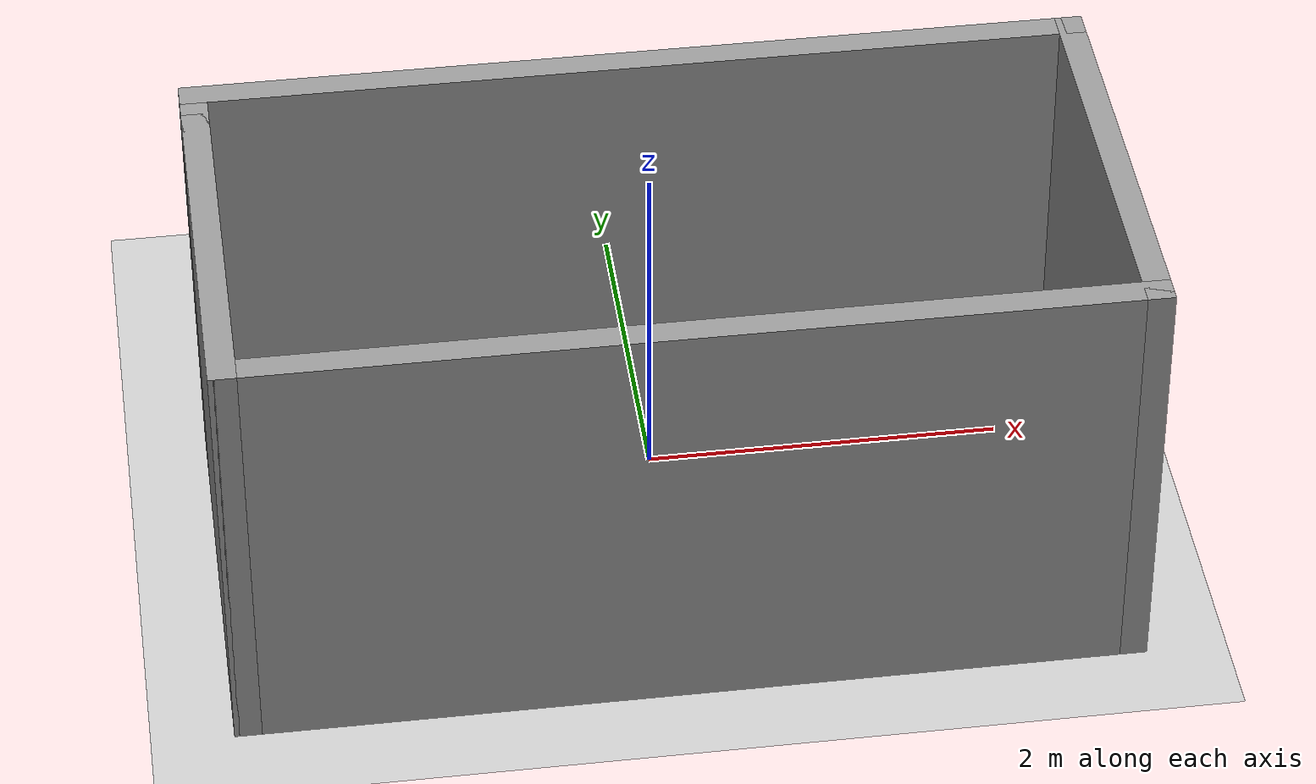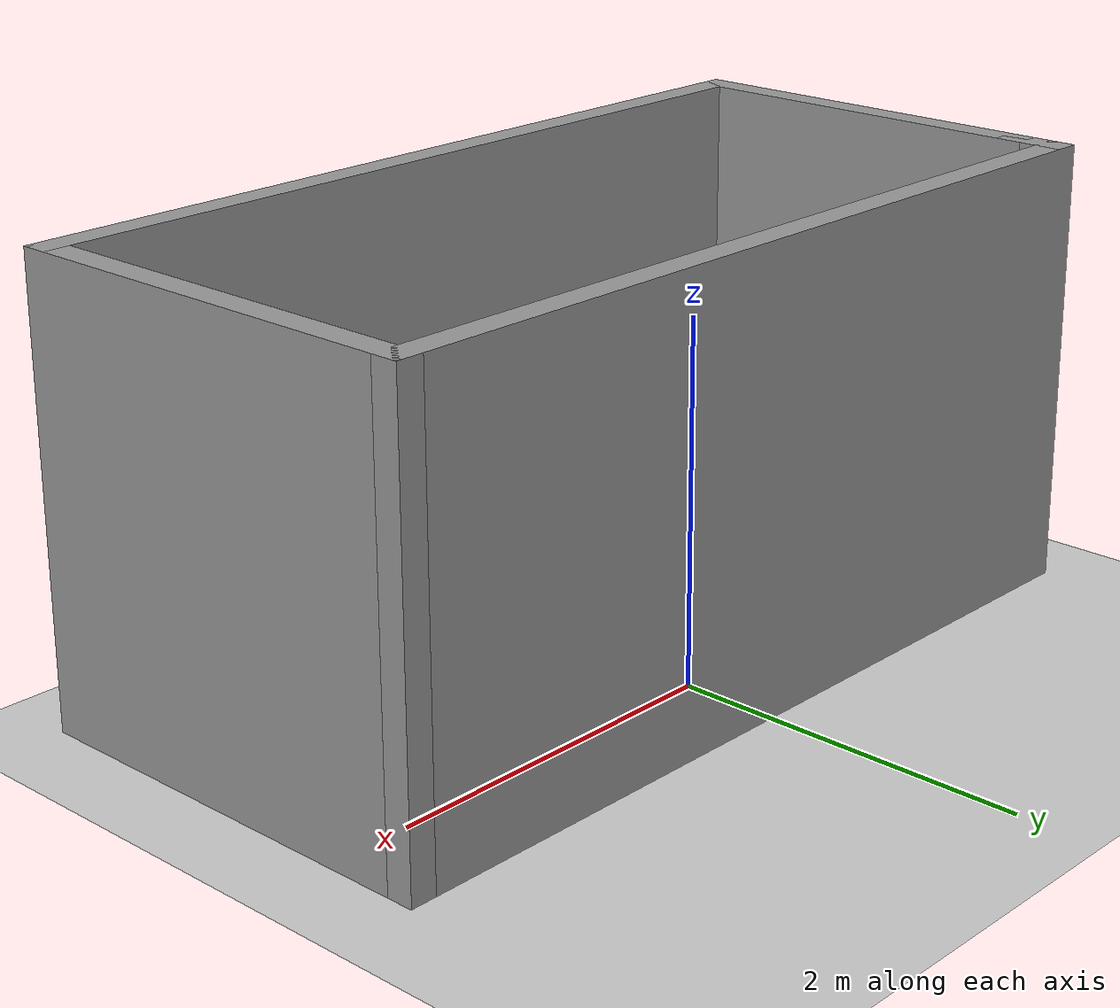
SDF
<?xml version="1.0" ?>
<sdf version="1.5">
  <world name="default">
    <!-- A global light source -->
    <include>
      <uri>model://sun</uri>
    </include>
    <!-- A ground plane -->
    <include>
      <uri>model://ground_plane</uri>
    </include>
    <include>
      <uri>model://asphalt_plane</uri>
    </include>
    <include>
      <uri>model://square_room</uri>
      <pose>0 0 0 0 0 0</pose>
    </include>
    <physics name='default_physics' default='0' type='ode'>
      <gravity>0 0 -9.8066</gravity>
      <ode>
        <solver>
          <type>quick</type>
          <iters>10</iters>
          <sor>1.3</sor>
          <use_dynamic_moi_rescaling>0</use_dynamic_moi_rescaling>
        </solver>
        <constraints>
          <cfm>0</cfm>
          <erp>0.2</erp>
          <contact_max_correcting_vel>100</contact_max_correcting_vel>
          <contact_surface_layer>0.001</contact_surface_layer>
        </constraints>
      </ode>
      <max_step_size>0.004</max_step_size>
      <real_time_factor>1</real_time_factor>
      <real_time_update_rate>250</real_time_update_rate>
      <magnetic_field>6.0e-6 2.3e-5 -4.2e-5</magnetic_field>
    </physics>
  </world>
</sdf>

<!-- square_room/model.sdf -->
<sdf version='1.7'>
  <model name='square_room'>
    <pose>-2.5125 -1.9575 0 0 -0 0</pose>
    <link name='Wall_0'>
      <collision name='Wall_0_Collision'>
        <geometry>
          <box>
            <size>2.25 0.15 2.5</size>
          </box>
        </geometry>
        <pose>0 0 1.25 0 -0 0</pose>
      </collision>
      <visual name='Wall_0_Visual'>
        <pose>0 0 1.25 0 -0 0</pose>
        <geometry>
          <box>
            <size>2.25 0.15 2.5</size>
          </box>
        </geometry>
        <material>
          <script>
            <uri>file://media/materials/scripts/gazebo.material</uri>
            <name>Gazebo/Grey</name>
          </script>
          <ambient>1 1 1 1</ambient>
        </material>
        <meta>
          <layer>0</layer>
        </meta>
      </visual>
      <pose>-2.4375 -0.8325 0 0 -0 -1.5708</pose>
    </link>
    <link name='Wall_1'>
      <collision name='Wall_1_Collision'>
        <geometry>
          <box>
            <size>5 0.15 2.5</size>
          </box>
        </geometry>
        <pose>0 0 1.25 0 -0 0</pose>
      </collision>
      <visual name='Wall_1_Visual'>
        <pose>0 0 1.25 0 -0 0</pose>
        <geometry>
          <box>
            <size>5 0.15 2.5</size>
          </box>
        </geometry>
        <material>
          <script>
            <uri>file://media/materials/scripts/gazebo.material</uri>
            <name>Gazebo/Grey</name>
          </script>
          <ambient>1 1 1 1</ambient>
        </material>
        <meta>
          <layer>0</layer>
        </meta>
      </visual>
      <pose>-0.0125 -1.8825 0 0 -0 0</pose>
    </link>
    <link name='Wall_2'>
      <collision name='Wall_2_Collision'>
        <geometry>
          <box>
            <size>2.5 0.15 2.5</size>
          </box>
        </geometry>
        <pose>0 0 1.25 0 -0 0</pose>
      </collision>
      <visual name='Wall_2_Visual'>
        <pose>0 0 1.25 0 -0 0</pose>
        <geometry>
          <box>
            <size>2.5 0.15 2.5</size>
          </box>
        </geometry>
        <material>
          <script>
            <uri>file://media/materials/scripts/gazebo.material</uri>
            <name>Gazebo/Grey</name>
          </script>
          <ambient>1 1 1 1</ambient>
        </material>
        <meta>
          <layer>0</layer>
        </meta>
      </visual>
      <pose>2.4125 -0.7075 0 0 -0 1.5708</pose>
    </link>
    <link name='Wall_3'>
      <collision name='Wall_3_Collision'>
        <geometry>
          <box>
            <size>5 0.15 2.5</size>
          </box>
        </geometry>
        <pose>0 0 1.25 0 -0 0</pose>
      </collision>
      <visual name='Wall_3_Visual'>
        <pose>0 0 1.25 0 -0 0</pose>
        <geometry>
          <box>
            <size>5 0.15 2.5</size>
          </box>
        </geometry>
        <material>
          <script>
            <uri>file://media/materials/scripts/gazebo.material</uri>
            <name>Gazebo/Grey</name>
          </script>
          <ambient>1 1 1 1</ambient>
        </material>
        <meta>
          <layer>0</layer>
        </meta>
      </visual>
      <pose>-0.0125 0.4675 0 0 -0 3.14159</pose>
    </link>
    <link name='Wall_4'>
      <collision name='Wall_4_Collision'>
        <geometry>
          <box>
            <size>0.4 0.15 2.5</size>
          </box>
        </geometry>
        <pose>0 0 1.25 0 -0 0</pose>
      </collision>
      <visual name='Wall_4_Visual'>
        <pose>0 0 1.25 0 -0 0</pose>
        <geometry>
          <box>
            <size>0.4 0.15 2.5</size>
          </box>
        </geometry>
        <material>
          <script>
            <uri>file://media/materials/scripts/gazebo.material</uri>
            <name>Gazebo/Grey</name>
          </script>
          <ambient>1 1 1 1</ambient>
        </material>
        <meta>
          <layer>0</layer>
        </meta>
      </visual>
      <pose>-2.4375 0.3425 0 0 -0 -1.5708</pose>
    </link>
    <static>1</static>
  </model>
</sdf>
